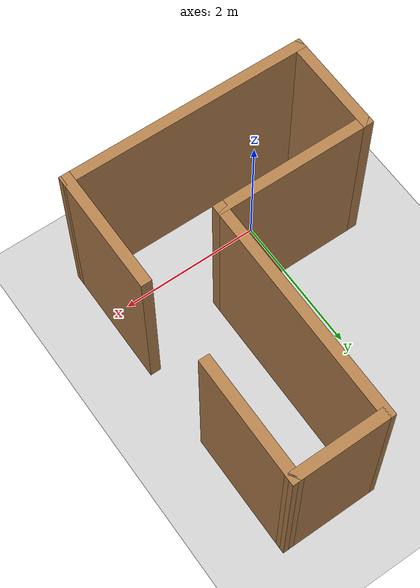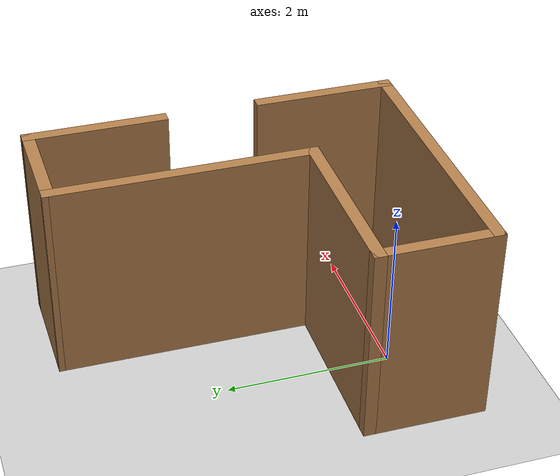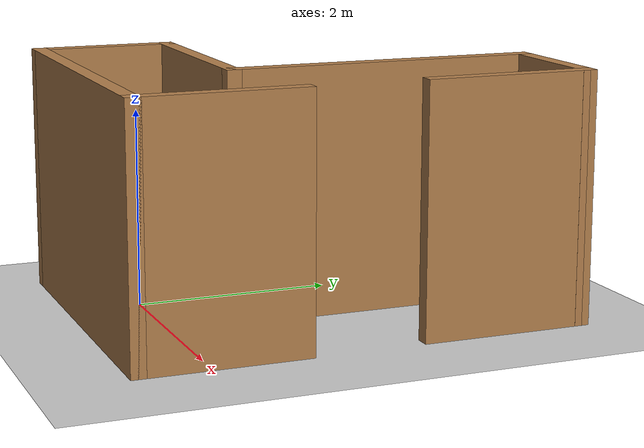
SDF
<sdf version="1.6">
 <world name="default">
  <light name="sun" type="directional">
   <pose>0 0 10 0 -0 0</pose>
   <diffuse>0.8 0.8 0.8 1</diffuse>
   <specular>0.2 0.2 0.2 1</specular>
   <attenuation>
    <range>1000</range>
    <constant>0.9</constant>
    <linear>0.01</linear>
    <quadratic>0.001</quadratic>
   </attenuation>
   <direction>-0.5 0.1 -0.9</direction>
  </light>
  <model name="ground_plane">
   <static>1</static>
   <link name="link">
    <collision name="collision">
     <geometry><plane><normal>0 0 1</normal><size>100 100</size></plane></geometry>
     <surface><friction><ode><mu>100</mu><mu2>50</mu2></ode></friction></surface>
    </collision>
    <visual name="visual">
     <cast_shadows>0</cast_shadows>
     <geometry><plane><normal>0 0 1</normal><size>100 100</size></plane></geometry>
     <material>
      <script><uri>file://media/materials/scripts/gazebo.material</uri><name>Gazebo/Grey</name></script>
     </material>
    </visual>
   </link>
  </model>
  <gravity>0 0 -9.8</gravity>
  <magnetic_field>6e-06 2.3e-05 -4.2e-05</magnetic_field>
  <atmosphere type="adiabatic"/>
  <physics name="default_physics" default="0" type="ode">
   <max_step_size>0.001</max_step_size>
   <real_time_factor>1</real_time_factor>
   <real_time_update_rate>1000</real_time_update_rate>
  </physics>
  <scene><ambient>0.4 0.4 0.4 1</ambient><background>0.7 0.7 0.7 1</background><shadows>1</shadows></scene>
  <audio><device>default</device></audio>
  <spherical_coordinates>
   <surface_model>EARTH_WGS84</surface_model>
   <latitude_deg>0</latitude_deg>
   <longitude_deg>0</longitude_deg>
   <elevation>0</elevation>
   <heading_deg>0</heading_deg>
  </spherical_coordinates>
  <model name="model_door_0">
   <pose>0.550025 1.54974 0 0 0 -1.57586</pose>
   <link name="Wall_31">
    <collision name="Wall_31_Collision">
     <geometry><box><size>1.75 0.15 2.5</size></box></geometry>
     <pose>0 0 1.25 0 -0 0</pose>
    </collision>
    <visual name="Wall_31_Visual">
     <pose>0 0 1.25 0 -0 0</pose>
     <geometry><box><size>1.75 0.15 2.5</size></box></geometry>
     <material>
      <script><uri>file://media/materials/scripts/gazebo.material</uri><name>Gazebo/Wood</name></script>
      <ambient>1 1 1 1</ambient>
     </material>
     <meta><layer>0</layer></meta>
    </visual>
    <pose>1.4303 1.675 0 0 -0 0</pose>
   </link>
   <link name="Wall_32">
    <collision name="Wall_32_Collision">
     <geometry><box><size>3.5 0.15 2.5</size></box></geometry>
     <pose>0 0 1.25 0 -0 0</pose>
    </collision>
    <visual name="Wall_32_Visual">
     <pose>0 0 1.25 0 -0 0</pose>
     <geometry><box><size>3.5 0.15 2.5</size></box></geometry>
     <material>
      <script><uri>file://media/materials/scripts/gazebo.material</uri><name>Gazebo/Wood</name></script>
      <ambient>1 1 1 1</ambient>
     </material>
     <meta><layer>0</layer></meta>
    </visual>
    <pose>2.2303 0 0 0 -0 -1.5708</pose>
   </link>
   <link name="Wall_33">
    <collision name="Wall_33_Collision">
     <geometry><box><size>1.5 0.15 2.5</size></box></geometry>
     <pose>0 0 1.25 0 -0 0</pose>
    </collision>
    <visual name="Wall_33_Visual">
     <pose>0 0 1.25 0 -0 0</pose>
     <geometry><box><size>1.5 0.15 2.5</size></box></geometry>
     <material>
      <script><uri>file://media/materials/scripts/gazebo.material</uri><name>Gazebo/Wood</name></script>
      <ambient>1 1 1 1</ambient>
     </material>
     <meta><layer>0</layer></meta>
    </visual>
    <pose>1.5553 -1.675 0 0 -0 3.14159</pose>
   </link>
   <link name="Wall_34">
    <collision name="Wall_34_Collision">
     <geometry><box><size>2.25 0.15 2.5</size></box></geometry>
     <pose>0 0 1.25 0 -0 0</pose>
    </collision>
    <visual name="Wall_34_Visual">
     <pose>0 0 1.25 0 -0 0</pose>
     <geometry><box><size>2.25 0.15 2.5</size></box></geometry>
     <material>
      <script><uri>file://media/materials/scripts/gazebo.material</uri><name>Gazebo/Wood</name></script>
      <ambient>1 1 1 1</ambient>
     </material>
     <meta><layer>0</layer></meta>
    </visual>
    <pose>0.880301 -0.625 0 0 -0 1.5708</pose>
   </link>
   <link name="Wall_40">
    <collision name="Wall_40_Collision">
     <geometry><box><size>3.25 0.15 2.5</size></box></geometry>
     <pose>0 0 1.25 0 -0 0</pose>
    </collision>
    <visual name="Wall_40_Visual">
     <pose>0 0 1.25 0 -0 0</pose>
     <geometry><box><size>3.25 0.15 2.5</size></box></geometry>
     <material>
      <script><uri>file://media/materials/scripts/gazebo.material</uri><name>Gazebo/Wood</name></script>
      <ambient>1 1 1 1</ambient>
     </material>
     <meta><layer>0</layer></meta>
    </visual>
    <pose>-0.669699 0.425 0 0 -0 3.14159</pose>
   </link>
   <link name="Wall_42">
    <collision name="Wall_42_Collision">
     <geometry><box><size>1.75 0.15 2.5</size></box></geometry>
     <pose>0 0 1.25 0 -0 0</pose>
    </collision>
    <visual name="Wall_42_Visual">
     <pose>0 0 1.25 0 -0 0</pose>
     <geometry><box><size>1.75 0.15 2.5</size></box></geometry>
     <material>
      <script><uri>file://media/materials/scripts/gazebo.material</uri><name>Gazebo/Wood</name></script>
      <ambient>1 1 1 1</ambient>
     </material>
     <meta><layer>0</layer></meta>
    </visual>
    <pose>-1.4297 1.665 0 0 -0 3.14159</pose>
   </link>
   <link name="Wall_43">
    <collision name="Wall_43_Collision">
     <geometry><box><size>1.39004 0.15 2.5</size></box></geometry>
     <pose>0 0 1.25 0 -0 0</pose>
    </collision>
    <visual name="Wall_43_Visual">
     <pose>0 0 1.25 0 -0 0</pose>
     <geometry><box><size>1.39004 0.15 2.5</size></box></geometry>
     <material>
      <script><uri>file://media/materials/scripts/gazebo.material</uri><name>Gazebo/Wood</name></script>
      <ambient>1 1 1 1</ambient>
     </material>
     <meta><layer>0</layer></meta>
    </visual>
    <pose>-2.2247 1.045 0 0 -0 -1.56273</pose>
   </link>
   <static>1</static>
  </model>
 </world>
</sdf>
